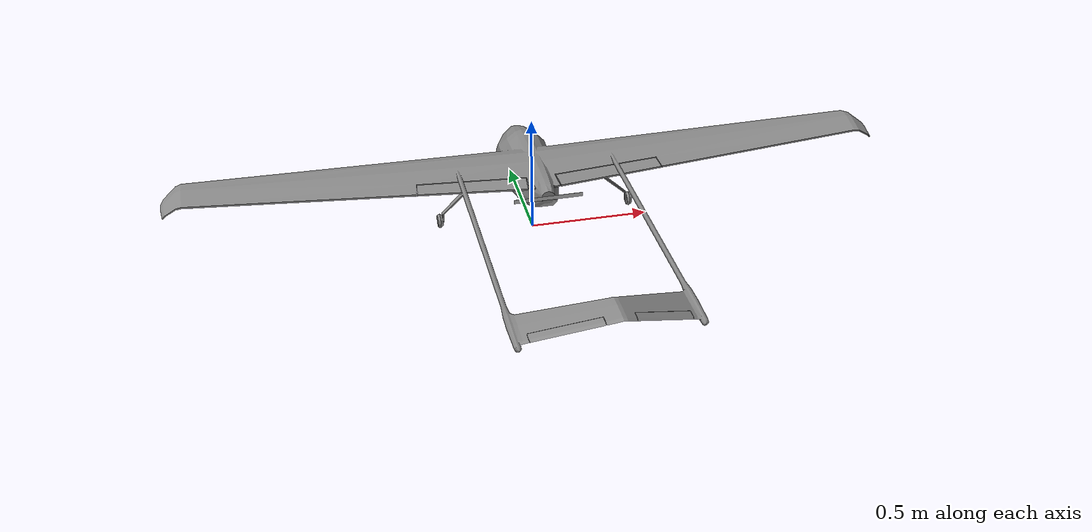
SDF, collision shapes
<?xml version="1.0" encoding="UTF-8"?>
<sdf version="1.9">
  <model name="albatross">
    <pose>0 0 0.2 0 0 0</pose>
    <link name="base_link">
      <visual name="visual_base_link">
        <geometry>
          <mesh>
            <uri>model://albatross/meshes/Albatross.dae</uri>
          </mesh>
        </geometry>
      </visual>
      <collision name="collision_base_link">
        <geometry>
          <mesh>
            <uri>model://albatross/meshes/Albatross.dae</uri>
          </mesh>
        </geometry>
      </collision>
      <inertial>
        <pose>9.2704498225588886e-09 0.03867858926469585 0.12190761634548454 1.5707963267948966 -1.4837483016685091 1.5707963267948959</pose>
        <mass>8.9417506140315845</mass>
        <inertia>
          <ixx>4.6567457753331763</ixx>
          <ixy>0</ixy>
          <ixz>0</ixz>
          <iyy>3.0225213670373495</iyy>
          <iyz>0</iyz>
          <izz>1.6675557462777661</izz>
        </inertia>
      </inertial>
    </link>
    <link name="aileron_left_link">
      <pose>-0.276 -0.157 0.13 0 0 -0.09622355555</pose>
      <visual name="visual_aileron_left_link">
        <geometry>
          <mesh>
            <uri>model://albatross/meshes/aileron_left.dae</uri>
          </mesh>
        </geometry>
      </visual>
      <collision name="collision_aileron_left_link">
        <geometry>
          <mesh>
            <uri>model://albatross/meshes/aileron_left.dae</uri>
          </mesh>
        </geometry>
      </collision>
      <inertial>
        <pose>0.0013926979950206766 -0.020256886992858734 -0.00084718131071825561 -1.5702649623555514 -1.4968622055264078 -1.5866465793244586</pose>
        <mass>0.69363462361421335</mass>
        <inertia>
          <ixx>0.011408993810042081</ixx>
          <ixy>0</ixy>
          <ixz>0</ixz>
          <iyy>0.011184896421525058</iyy>
          <iyz>0</iyz>
          <izz>0.0002419378408971488</izz>
        </inertia>
      </inertial>
    </link>
    <joint name="aileron_left_joint" type="revolute">
      <parent>base_link</parent>
      <child>aileron_left_link</child>
      <axis>
        <xyz>1 0 0</xyz>
        <limit>
          <lower>0</lower>
          <upper>0</upper>
          <effort>0</effort>
          <velocity>0</velocity>
        </limit>
        <dynamics>
          <spring_reference>0</spring_reference>
          <spring_stiffness>0</spring_stiffness>
        </dynamics>
        <use_parent_model_frame>1</use_parent_model_frame>
      </axis>
    </joint>
    <link name="aileron_right_link">
      <pose>0.276 -0.157 0.13 0 0 0.09622355555</pose>
      <visual name="visual_aileron_right_link">
        <geometry>
          <mesh>
            <uri>model://albatross/meshes/aileron_right.dae</uri>
          </mesh>
        </geometry>
      </visual>
      <collision name="collision_aileron_right_link">
        <geometry>
          <mesh>
            <uri>model://albatross/meshes/aileron_right.dae</uri>
          </mesh>
        </geometry>
      </collision>
      <inertial>
        <pose>-0.0013927001631649414 -0.020256886759491138 -0.00084718303942941605 -1.5713276505282008 -1.496862114877646 -1.5549461086906684</pose>
        <mass>0.69363463531782987</mass>
        <inertia>
          <ixx>0.011408994031789375</ixx>
          <ixy>0</ixy>
          <ixz>0</ixz>
          <iyy>0.011184896645700647</iyy>
          <iyz>0</iyz>
          <izz>0.00024193783975385642</izz>
        </inertia>
      </inertial>
    </link>
    <joint name="aileron_right_joint" type="revolute">
      <parent>base_link</parent>
      <child>aileron_right_link</child>
      <axis>
        <xyz>1 0 0</xyz>
        <limit>
          <lower>0</lower>
          <upper>0</upper>
          <effort>0</effort>
          <velocity>0</velocity>
        </limit>
        <dynamics>
          <spring_reference>0</spring_reference>
          <spring_stiffness>0</spring_stiffness>
        </dynamics>
        <use_parent_model_frame>1</use_parent_model_frame>
      </axis>
    </joint>
    <link name="rudder_left_link">
      <pose>-0.17 -1.283 0.212 1.57 -0.39905911111 -0.44366455555</pose>
      <visual name="visual_rudder_left_link">
        <geometry>
          <mesh>
            <uri>model://albatross/meshes/rudder_left.dae</uri>
          </mesh>
        </geometry>
      </visual>
      <collision name="collision_rudder_left_link">
        <geometry>
          <mesh>
            <uri>model://albatross/meshes/rudder_left.dae</uri>
          </mesh>
        </geometry>
      </collision>
      <inertial>
        <pose>0.0086659258447588771 -0.0034581440980500826 0.011993788874177187 1.5723926276260292 -0.18945174289552996 1.5667283795418694</pose>
        <mass>0.16659999435205503</mass>
        <inertia>
          <ixx>0.0010555073514094649</ixx>
          <ixy>0</ixy>
          <ixz>0</ixz>
          <iyy>0.0010404851349077506</iyy>
          <iyz>0</iyz>
          <izz>1.723734714341286e-05</izz>
        </inertia>
      </inertial>
    </link>
    <joint name="rudder_left_joint" type="revolute">
      <parent>base_link</parent>
      <child>rudder_left_link</child>
      <axis>
        <xyz>1 0 0</xyz>
        <limit>
          <lower>0</lower>
          <upper>0</upper>
          <effort>0</effort>
          <velocity>0</velocity>
        </limit>
        <dynamics>
          <spring_reference>0</spring_reference>
          <spring_stiffness>0</spring_stiffness>
        </dynamics>
        <use_parent_model_frame>1</use_parent_model_frame>
      </axis>
    </joint>
    <link name="rudder_right_link">
      <pose>0.17 -1.283 0.212 1.57 0.39905911111 0.44366455555</pose>
      <visual name="visual_rudder_right_link">
        <geometry>
          <mesh>
            <uri>model://albatross/meshes/rudder_right.dae</uri>
          </mesh>
        </geometry>
      </visual>
      <collision name="collision_rudder_right_link">
        <geometry>
          <mesh>
            <uri>model://albatross/meshes/rudder_right.dae</uri>
          </mesh>
        </geometry>
      </collision>
      <inertial>
        <pose>-0.0086659165291879357 -0.003458124410117001 0.011993796077636124 1.5691999396168039 -0.18945218003724901 1.5748643595746579</pose>
        <mass>0.1665997119700709</mass>
        <inertia>
          <ixx>0.0010555055074389123</ixx>
          <ixy>0</ixy>
          <ixz>0</ixz>
          <iyy>0.0010404833188929115</iyy>
          <iyz>0</iyz>
          <izz>1.7237308824860217e-05</izz>
        </inertia>
      </inertial>
    </link>
    <joint name="rudder_right_joint" type="revolute">
      <parent>base_link</parent>
      <child>rudder_right_link</child>
      <axis>
        <xyz>1 0 0</xyz>
        <limit>
          <lower>0</lower>
          <upper>0</upper>
          <effort>0</effort>
          <velocity>0</velocity>
        </limit>
        <dynamics>
          <spring_reference>0</spring_reference>
          <spring_stiffness>0</spring_stiffness>
        </dynamics>
        <use_parent_model_frame>1</use_parent_model_frame>
      </axis>
    </joint>
    <link name="rotor_1">
      <gravity>true</gravity>
      <self_collide>false</self_collide>
      <velocity_decay/>
      <pose>0.0 -0.31 0.118 1.57 0 0</pose>
      <inertial>
          <mass>0.016076923076923075</mass>
          <inertia>
            <ixx>3.8464910483993325e-07</ixx>
            <iyy>2.6115851691700804e-05</iyy>
            <izz>2.649858234714004e-05</izz>
          </inertia>
        </inertial>
      <visual name="rotor_1_visual">
        <geometry>
          <mesh>
            <uri>model://albatross/meshes/propeller_cw.dae</uri>
          </mesh>
        </geometry>
      </visual>
      <collision name="rotor_1_collision">
        <pose>0 0 0 0 0 0 </pose>
        <geometry>
          <box>
            <size>0.2792307692307692 0.016923076923076923 0.0008461538461538462</size>
          </box>
        </geometry>
        <surface>
          <contact>
            <ode>
              <min_depth>0.001</min_depth>
              <max_vel>0</max_vel>
            </ode>
          </contact>
          <friction>
            <ode/>
          </friction>
        </surface>
      </collision>
    </link>
    <joint name="rotor_1_joint" type="revolute">
      <parent>base_link</parent>
      <child>rotor_1</child>
      <axis>
        <xyz>0 0 1</xyz>
        <limit>
          <lower>-1e+16</lower>
          <upper>1e+16</upper>
        </limit>
        <dynamics>
          <spring_reference>0</spring_reference>
          <spring_stiffness>0</spring_stiffness>
        </dynamics>
        <use_parent_model_frame>1</use_parent_model_frame>
      </axis>
    </joint>
  </model>
</sdf>
